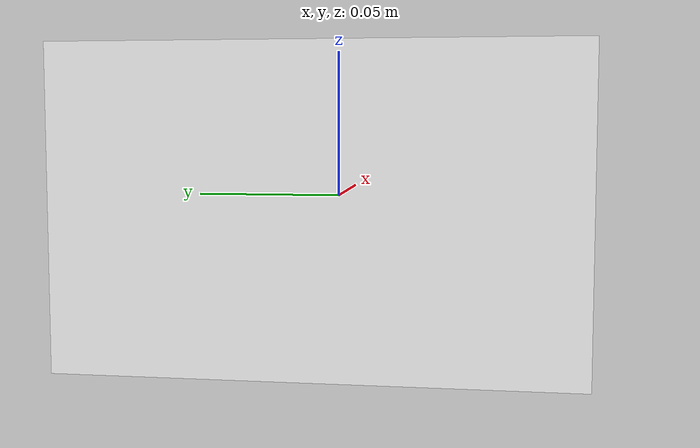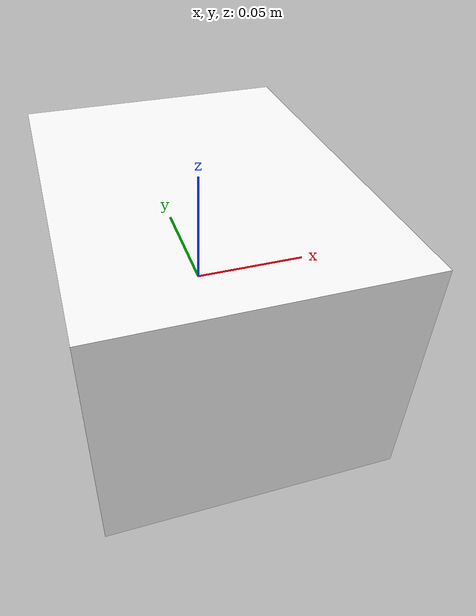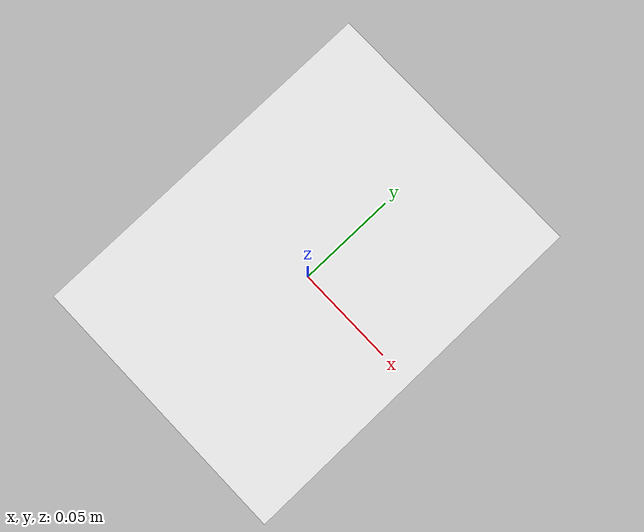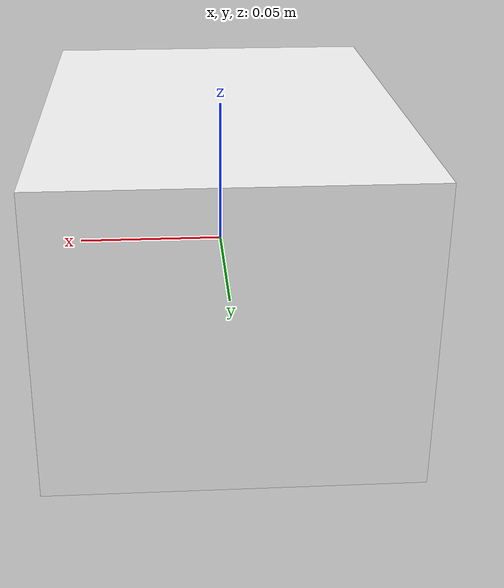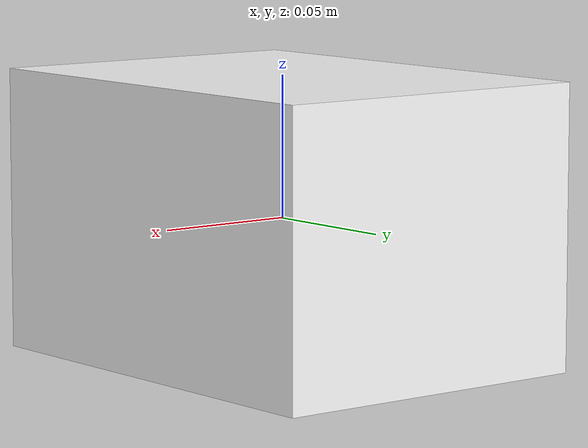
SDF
<?xml version="1.0" ?>
<sdf version="1.9">
  <model name="box">
    <static>false</static>

    <link name="link">
      <inertial>
        <mass>0.1</mass>
        <inertia>
          <ixx>0.0001067</ixx>
          <iyy>0.0001067</iyy>
          <izz>0.0001067</izz>
          <ixy>0.0</ixy>
          <ixz>0.0</ixz>
          <iyz>0.0</iyz>
        </inertia>
      </inertial>

      <collision name="collision">
        <geometry>
          <box>
            <!-- Kich thuoc box: dai rong cao, don vi met -->
            <size>0.12 0.16 0.1</size>
          </box>
        </geometry>
      </collision>

      <visual name="visual">
        <geometry>
          <box>
            <!-- Giu cung kich thuoc voi collision -->
            <size>0.12 0.16 0.1</size>
          </box>
        </geometry>

        <material>
          <!-- Mau trang de YOLO / camera de tach voi background den -->
          <ambient>1.0 1.0 1.0 1.0</ambient>
          <diffuse>1.0 1.0 1.0 1.0</diffuse>
          <specular>0.2 0.2 0.2 1.0</specular>
          <emissive>0.0 0.0 0.0 1.0</emissive>
        </material>

        <cast_shadows>true</cast_shadows>
      </visual>
    </link>
  </model>
</sdf>
